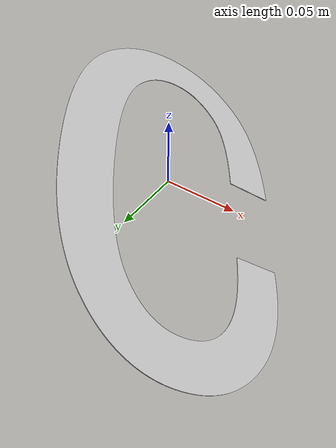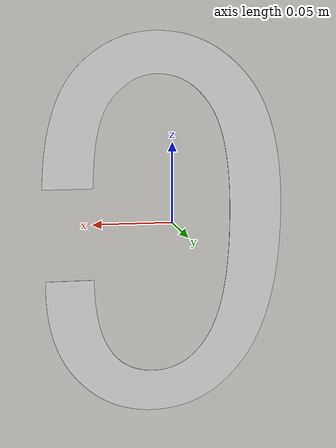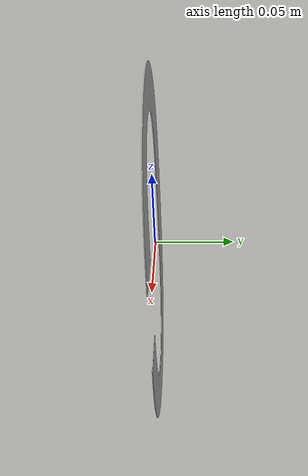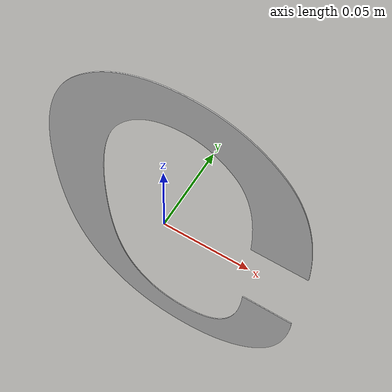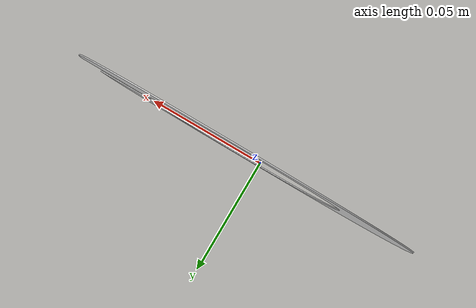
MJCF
<mujoco model="scene_C_edit">
  <compiler angle="degree" meshdir="meshes" texturedir="textures"/>
  <option gravity="0 0 -9.81"/>
  <default>
    <joint armature="0.01" damping="0.5"/>
    <default class="visual">
      <geom contype="0" conaffinity="0" group="2"/>
    </default>
    <default class="collision">
      <geom rgba="0.9 0.9 0.0 0.2" group="3"/>
    </default>
  </default>
  <asset>
    <material name="M_mat0_002" rgba="0.8471 0.8471 0.8471 1.0000"/>
    <mesh name="ImagetostlMesh0001" file="ImagetostlMesh0001.obj" inertia="shell"/>
  </asset>
  <worldbody>
    <body name="imagetostl_mesh_0_001" pos="0.000000 0.000000 0.000000">
      <geom type="mesh" mesh="ImagetostlMesh0001" class="visual" material="M_mat0_002"/>
      <geom name="imagetostl_mesh_0001_aabb" type="box" pos="0.0057 0.0000 -0.0012" size="0.0750 0.0050 0.1193" class="collision"/>
    </body>
  </worldbody>
</mujoco>
